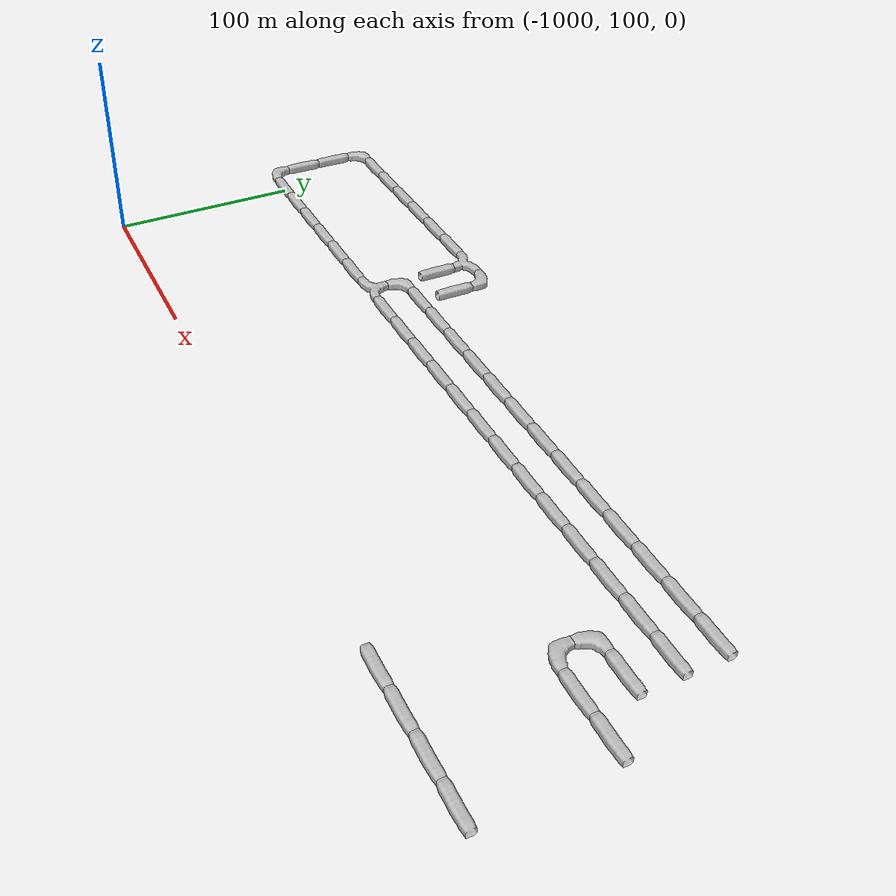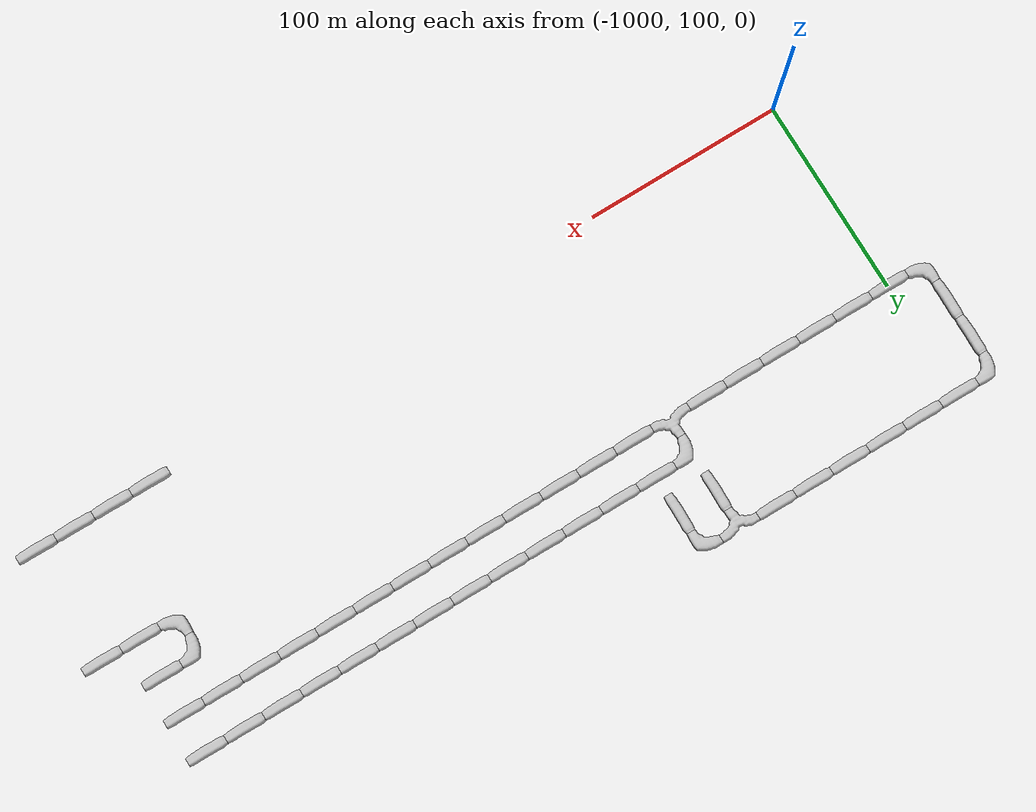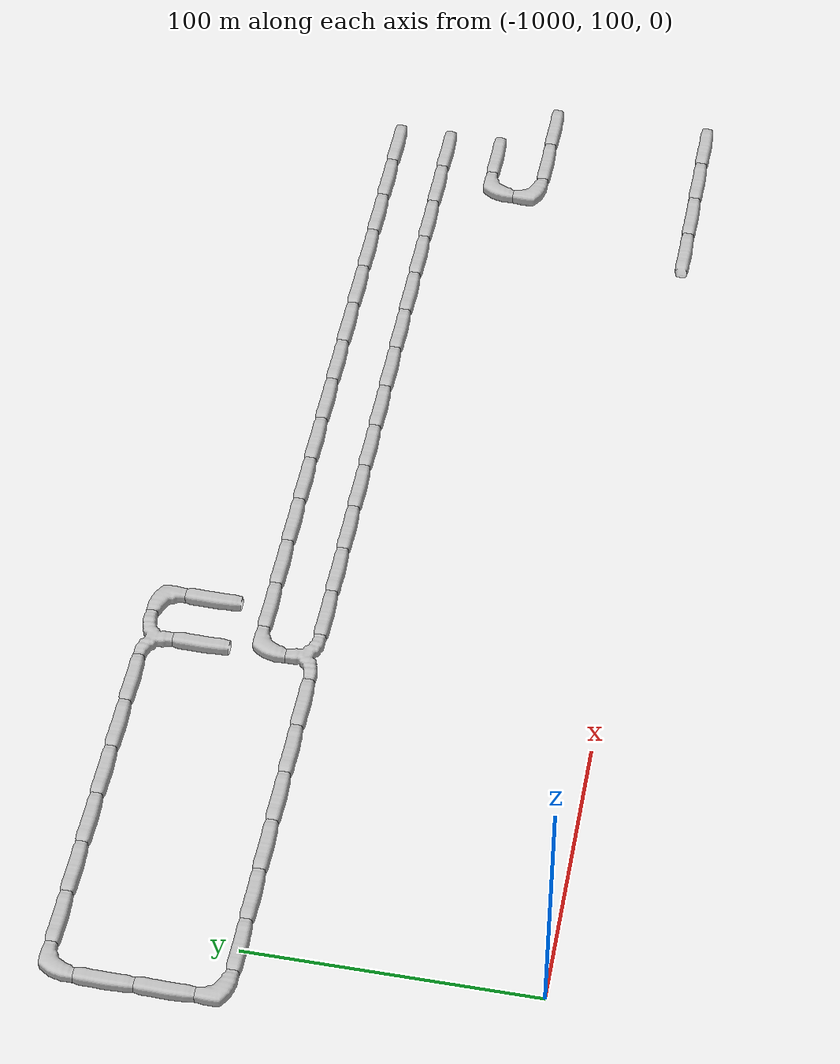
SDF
<sdf version="1.6">
 <world name="cave_32000_64">
  <include>
   <static>true</static>
   <name>cave_-33_5</name>
   <pose>-660 100 0 0 0 1.5707963267948966</pose>
   <uri>model://cave_straight_20m</uri>
  </include>
  <include>
   <static>true</static>
   <name>cave_-32_5</name>
   <pose>-640 100 0 0 0 1.5707963267948966</pose>
   <uri>model://cave_straight_20m</uri>
  </include>
  <include>
   <static>true</static>
   <name>cave_-31_5</name>
   <pose>-620 100 0 0 0 1.5707963267948966</pose>
   <uri>model://cave_straight_20m</uri>
  </include>
  <include>
   <static>true</static>
   <name>cave_-30_5</name>
   <pose>-600 100 0 0 0 1.5707963267948966</pose>
   <uri>model://cave_straight_20m</uri>
  </include>
  <include>
   <static>true</static>
   <name>cave_-31_9</name>
   <pose>-620 180 0 0 0 1.5707963267948966</pose>
   <uri>model://cave_straight_20m</uri>
  </include>
  <include>
   <static>true</static>
   <name>cave_-32_9</name>
   <pose>-640 180 0 0 0 -1.5707963267948966</pose>
   <uri>model://cave_L_20m</uri>
  </include>
  <include>
   <static>true</static>
   <name>cave_-32_8</name>
   <pose>-640 160 0 0 0 0.0</pose>
   <uri>model://cave_L_20m</uri>
  </include>
  <include>
   <static>true</static>
   <name>cave_-31_8</name>
   <pose>-620 160 0 0 0 1.5707963267948966</pose>
   <uri>model://cave_straight_20m</uri>
  </include>
  <include>
   <static>true</static>
   <name>cave_-30_8</name>
   <pose>-600 160 0 0 0 1.5707963267948966</pose>
   <uri>model://cave_straight_20m</uri>
  </include>
  <include>
   <static>true</static>
   <name>cave_-31_11</name>
   <pose>-620 220 0 0 0 1.5707963267948966</pose>
   <uri>model://cave_straight_20m</uri>
  </include>
  <include>
   <static>true</static>
   <name>cave_-32_11</name>
   <pose>-640 220 0 0 0 1.5707963267948966</pose>
   <uri>model://cave_straight_20m</uri>
  </include>
  <include>
   <static>true</static>
   <name>cave_-33_11</name>
   <pose>-660 220 0 0 0 1.5707963267948966</pose>
   <uri>model://cave_straight_20m</uri>
  </include>
  <include>
   <static>true</static>
   <name>cave_-34_11</name>
   <pose>-680 220 0 0 0 1.5707963267948966</pose>
   <uri>model://cave_straight_20m</uri>
  </include>
  <include>
   <static>true</static>
   <name>cave_-35_11</name>
   <pose>-700 220 0 0 0 1.5707963267948966</pose>
   <uri>model://cave_straight_20m</uri>
  </include>
  <include>
   <static>true</static>
   <name>cave_-36_11</name>
   <pose>-720 220 0 0 0 1.5707963267948966</pose>
   <uri>model://cave_straight_20m</uri>
  </include>
  <include>
   <static>true</static>
   <name>cave_-37_11</name>
   <pose>-740 220 0 0 0 1.5707963267948966</pose>
   <uri>model://cave_straight_20m</uri>
  </include>
  <include>
   <static>true</static>
   <name>cave_-38_11</name>
   <pose>-760 220 0 0 0 1.5707963267948966</pose>
   <uri>model://cave_straight_20m</uri>
  </include>
  <include>
   <static>true</static>
   <name>cave_-39_11</name>
   <pose>-780 220 0 0 0 1.5707963267948966</pose>
   <uri>model://cave_straight_20m</uri>
  </include>
  <include>
   <static>true</static>
   <name>cave_-40_11</name>
   <pose>-800 220 0 0 0 1.5707963267948966</pose>
   <uri>model://cave_straight_20m</uri>
  </include>
  <include>
   <static>true</static>
   <name>cave_-41_11</name>
   <pose>-820 220 0 0 0 1.5707963267948966</pose>
   <uri>model://cave_straight_20m</uri>
  </include>
  <include>
   <static>true</static>
   <name>cave_-42_11</name>
   <pose>-840 220 0 0 0 1.5707963267948966</pose>
   <uri>model://cave_straight_20m</uri>
  </include>
  <include>
   <static>true</static>
   <name>cave_-43_11</name>
   <pose>-860 220 0 0 0 1.5707963267948966</pose>
   <uri>model://cave_straight_20m</uri>
  </include>
  <include>
   <static>true</static>
   <name>cave_-44_11</name>
   <pose>-880 220 0 0 0 -1.5707963267948966</pose>
   <uri>model://cave_L_20m</uri>
  </include>
  <include>
   <static>true</static>
   <name>cave_-44_10</name>
   <pose>-880 200 0 0 0 0.0</pose>
   <uri>model://cave_3way_20m</uri>
  </include>
  <include>
   <static>true</static>
   <name>cave_-43_10</name>
   <pose>-860 200 0 0 0 1.5707963267948966</pose>
   <uri>model://cave_straight_20m</uri>
  </include>
  <include>
   <static>true</static>
   <name>cave_-42_10</name>
   <pose>-840 200 0 0 0 1.5707963267948966</pose>
   <uri>model://cave_straight_20m</uri>
  </include>
  <include>
   <static>true</static>
   <name>cave_-41_10</name>
   <pose>-820 200 0 0 0 1.5707963267948966</pose>
   <uri>model://cave_straight_20m</uri>
  </include>
  <include>
   <static>true</static>
   <name>cave_-40_10</name>
   <pose>-800 200 0 0 0 1.5707963267948966</pose>
   <uri>model://cave_straight_20m</uri>
  </include>
  <include>
   <static>true</static>
   <name>cave_-39_10</name>
   <pose>-780 200 0 0 0 1.5707963267948966</pose>
   <uri>model://cave_straight_20m</uri>
  </include>
  <include>
   <static>true</static>
   <name>cave_-38_10</name>
   <pose>-760 200 0 0 0 1.5707963267948966</pose>
   <uri>model://cave_straight_20m</uri>
  </include>
  <include>
   <static>true</static>
   <name>cave_-37_10</name>
   <pose>-740 200 0 0 0 1.5707963267948966</pose>
   <uri>model://cave_straight_20m</uri>
  </include>
  <include>
   <static>true</static>
   <name>cave_-36_10</name>
   <pose>-720 200 0 0 0 1.5707963267948966</pose>
   <uri>model://cave_straight_20m</uri>
  </include>
  <include>
   <static>true</static>
   <name>cave_-35_10</name>
   <pose>-700 200 0 0 0 1.5707963267948966</pose>
   <uri>model://cave_straight_20m</uri>
  </include>
  <include>
   <static>true</static>
   <name>cave_-34_10</name>
   <pose>-680 200 0 0 0 1.5707963267948966</pose>
   <uri>model://cave_straight_20m</uri>
  </include>
  <include>
   <static>true</static>
   <name>cave_-33_10</name>
   <pose>-660 200 0 0 0 1.5707963267948966</pose>
   <uri>model://cave_straight_20m</uri>
  </include>
  <include>
   <static>true</static>
   <name>cave_-32_10</name>
   <pose>-640 200 0 0 0 1.5707963267948966</pose>
   <uri>model://cave_straight_20m</uri>
  </include>
  <include>
   <static>true</static>
   <name>cave_-31_10</name>
   <pose>-620 200 0 0 0 1.5707963267948966</pose>
   <uri>model://cave_straight_20m</uri>
  </include>
  <include>
   <static>true</static>
   <name>cave_-45_10</name>
   <pose>-900 200 0 0 0 1.5707963267948966</pose>
   <uri>model://cave_straight_20m</uri>
  </include>
  <include>
   <static>true</static>
   <name>cave_-46_10</name>
   <pose>-920 200 0 0 0 1.5707963267948966</pose>
   <uri>model://cave_straight_20m</uri>
  </include>
  <include>
   <static>true</static>
   <name>cave_-47_10</name>
   <pose>-940 200 0 0 0 1.5707963267948966</pose>
   <uri>model://cave_straight_20m</uri>
  </include>
  <include>
   <static>true</static>
   <name>cave_-48_10</name>
   <pose>-960 200 0 0 0 1.5707963267948966</pose>
   <uri>model://cave_straight_20m</uri>
  </include>
  <include>
   <static>true</static>
   <name>cave_-49_10</name>
   <pose>-980 200 0 0 0 1.5707963267948966</pose>
   <uri>model://cave_straight_20m</uri>
  </include>
  <include>
   <static>true</static>
   <name>cave_-50_10</name>
   <pose>-1000 200 0 0 0 1.5707963267948966</pose>
   <uri>model://cave_straight_20m</uri>
  </include>
  <include>
   <static>true</static>
   <name>cave_-51_10</name>
   <pose>-1020 200 0 0 0 0.0</pose>
   <uri>model://cave_L_20m</uri>
  </include>
  <include>
   <static>true</static>
   <name>cave_-51_11</name>
   <pose>-1020 220 0 0 0 0.0</pose>
   <uri>model://cave_straight_20m</uri>
  </include>
  <include>
   <static>true</static>
   <name>cave_-51_12</name>
   <pose>-1020 240 0 0 0 0.0</pose>
   <uri>model://cave_straight_20m</uri>
  </include>
  <include>
   <static>true</static>
   <name>cave_-51_13</name>
   <pose>-1020 260 0 0 0 -1.5707963267948966</pose>
   <uri>model://cave_L_20m</uri>
  </include>
  <include>
   <static>true</static>
   <name>cave_-50_13</name>
   <pose>-1000 260 0 0 0 1.5707963267948966</pose>
   <uri>model://cave_straight_20m</uri>
  </include>
  <include>
   <static>true</static>
   <name>cave_-49_13</name>
   <pose>-980 260 0 0 0 1.5707963267948966</pose>
   <uri>model://cave_straight_20m</uri>
  </include>
  <include>
   <static>true</static>
   <name>cave_-48_13</name>
   <pose>-960 260 0 0 0 1.5707963267948966</pose>
   <uri>model://cave_straight_20m</uri>
  </include>
  <include>
   <static>true</static>
   <name>cave_-47_13</name>
   <pose>-940 260 0 0 0 1.5707963267948966</pose>
   <uri>model://cave_straight_20m</uri>
  </include>
  <include>
   <static>true</static>
   <name>cave_-46_13</name>
   <pose>-920 260 0 0 0 1.5707963267948966</pose>
   <uri>model://cave_straight_20m</uri>
  </include>
  <include>
   <static>true</static>
   <name>cave_-45_13</name>
   <pose>-900 260 0 0 0 1.5707963267948966</pose>
   <uri>model://cave_straight_20m</uri>
  </include>
  <include>
   <static>true</static>
   <name>cave_-44_13</name>
   <pose>-880 260 0 0 0 3.141592653589793</pose>
   <uri>model://cave_3way_20m</uri>
  </include>
  <include>
   <static>true</static>
   <name>cave_-43_13</name>
   <pose>-860 260 0 0 0 3.141592653589793</pose>
   <uri>model://cave_L_20m</uri>
  </include>
  <include>
   <static>true</static>
   <name>cave_-43_12</name>
   <pose>-860 240 0 0 0 0.0</pose>
   <uri>model://cave_straight_20m</uri>
  </include>
  <include>
   <static>true</static>
   <name>cave_-44_12</name>
   <pose>-880 240 0 0 0 0.0</pose>
   <uri>model://cave_straight_20m</uri>
  </include>
 </world>
</sdf>
